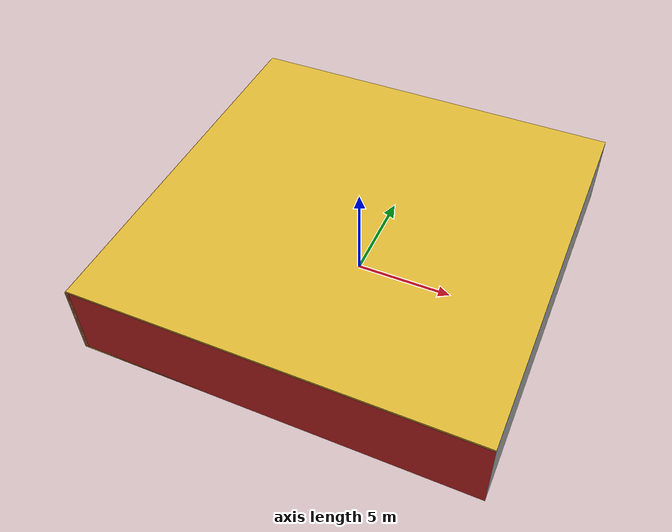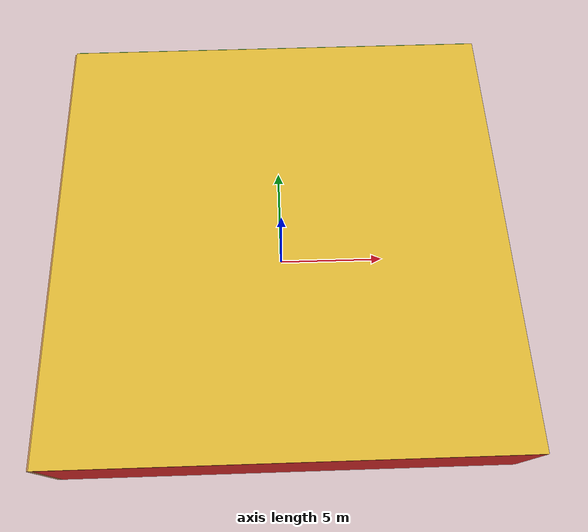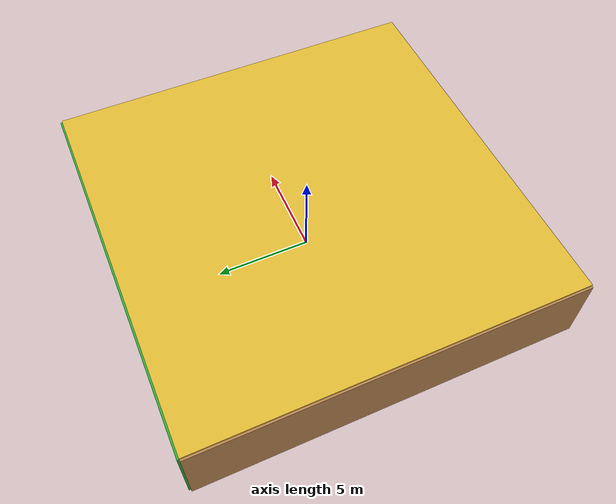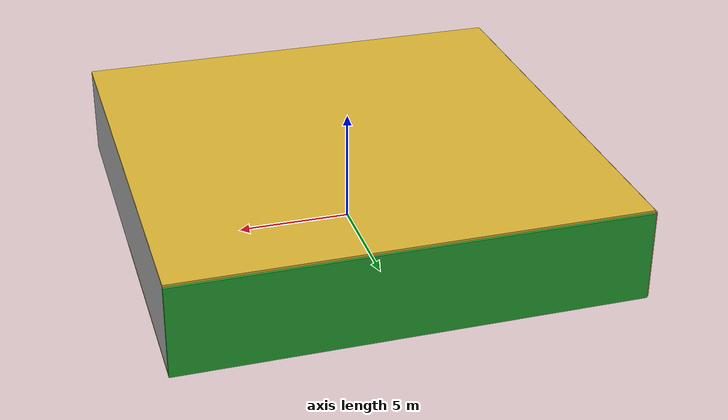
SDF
<sdf version="1.4">
 <world name="default">
  <physics type="ode">
   <max_step_size>0.001</max_step_size>
   <real_time_factor>1</real_time_factor>
   <real_time_update_rate>1000</real_time_update_rate>
   <gravity>0 0 -9.8</gravity>
  </physics>
  <scene><ambient>0.4 0.4 0.4 1</ambient><background>0.7 0.7 0.7 1</background><shadows>1</shadows></scene>
  <model name="Surrounding">
   <static>1</static>
   <link name="Ceiling">
    <collision name="Ceiling_Collision"><geometry><box><size>20 20 0.1</size></box></geometry></collision>
    <visual name="Ceiling_Visual">
     <geometry><box><size>20 20 0.1</size></box></geometry>
     <material>
      <script><uri>file://media/materials/scripts/gazebo.material</uri><name>Gazebo/Gold</name></script>
     </material>
    </visual>
    <pose>0 0 4.05 0 0 0</pose>
   </link>
   <link name="Wall_South">
    <collision name="Wall_South_Collision">
     <geometry><box><size>20 0 4</size></box></geometry>
     <pose>0 0 2 0 -0 0</pose>
    </collision>
    <visual name="Wall_South_Visual">
     <pose>0 0 2 0 -0 0</pose>
     <geometry><box><size>20 0 4</size></box></geometry>
     <material>
      <script><uri>file://media/materials/scripts/gazebo.material</uri><name>Gazebo/RedGlow</name></script>
     </material>
    </visual>
    <velocity_decay><linear>0</linear><angular>0</angular></velocity_decay>
    <pose>0 -10 0 0 -0 0</pose>
   </link>
   <link name="Wall_East">
    <collision name="Wall_21_Collision">
     <geometry><box><size>20 0 4</size></box></geometry>
     <pose>0 0 2 0 -0 0</pose>
    </collision>
    <visual name="Wall_21_Visual">
     <pose>0 0 2 0 -0 0</pose>
     <geometry><box><size>20 0 4</size></box></geometry>
     <material>
      <script><uri>file://media/materials/scripts/gazebo.material</uri><name>Gazebo/PioneerBody</name></script>
     </material>
    </visual>
    <velocity_decay><linear>0</linear><angular>0</angular></velocity_decay>
    <pose>10 0 0 0 -0 1.5708</pose>
   </link>
   <link name="Wall_North">
    <collision name="Wall_22_Collision">
     <geometry><box><size>20 0.2 4</size></box></geometry>
     <pose>0 0 2 0 -0 0</pose>
    </collision>
    <visual name="Wall_22_Visual">
     <pose>0 0 2 0 -0 0</pose>
     <geometry><box><size>20 0.2 4</size></box></geometry>
     <material>
      <script><uri>file://media/materials/scripts/gazebo.material</uri><name>Gazebo/Green</name></script>
     </material>
    </visual>
    <velocity_decay><linear>0</linear><angular>0</angular></velocity_decay>
    <pose>0 10 0 0 -0 0</pose>
   </link>
   <link name="Wall_West">
    <collision name="Wall_23_Collision">
     <geometry><box><size>20 0.2 4</size></box></geometry>
     <pose>0 0 2 0 -0 0</pose>
    </collision>
    <visual name="Wall_23_Visual">
     <pose>0 0 2 0 -0 0</pose>
     <geometry><box><size>20 0.2 4</size></box></geometry>
     <material>
      <script><uri>file://media/materials/scripts/gazebo.material</uri><name>Gazebo/Wood</name></script>
     </material>
    </visual>
    <velocity_decay><linear>0</linear><angular>0</angular></velocity_decay>
    <pose>-10 0 0 0 0 -1.5708</pose>
   </link>
   <link name="Ground_link">
    <collision name="collision">
     <pose>0 0 .05 0 -0 0</pose>
     <geometry><box><size>20 20 0.1</size></box></geometry>
    </collision>
    <visual name="visual">
     <pose>0 0 .05 0 -0 0</pose>
     <geometry><box><size>20 20 0.1</size></box></geometry>
     <material>
      <script><uri>file://media/materials/scripts/gazebo.material</uri><name>Gazebo/ZincYellow</name></script>
     </material>
    </visual>
   </link>
   <static>1</static>
  </model>
  <spherical_coordinates>
   <surface_model>EARTH_WGS84</surface_model>
   <latitude_deg>0</latitude_deg>
   <longitude_deg>0</longitude_deg>
   <elevation>0</elevation>
   <heading_deg>0</heading_deg>
  </spherical_coordinates>
  <light name="lightball_0" type="diffuse">
   <diffuse>0.8 0.8 0.8 1</diffuse>
   <specular>0.2 0.2 0.2 1</specular>
   <attenuation>
    <range>100</range>
    <constant>0.7</constant>
    <linear>0.01</linear>
    <quadratic>0.001</quadratic>
   </attenuation>
   <direction>-0.5 0.1 -0.9</direction>
   <pose>-9.19041989229 -6.64424774914 2.36919932605 0 0 0</pose>
  </light>
  <light name="lightball_1" type="diffuse">
   <diffuse>0.8 0.8 0.8 1</diffuse>
   <specular>0.2 0.2 0.2 1</specular>
   <attenuation>
    <range>100</range>
    <constant>0.7</constant>
    <linear>0.01</linear>
    <quadratic>0.001</quadratic>
   </attenuation>
   <direction>-0.5 0.1 -0.9</direction>
   <pose>-5.84477859204 -0.267742174962 2.15540942471 0 0 0</pose>
  </light>
  <light name="lightball_2" type="diffuse">
   <diffuse>0.8 0.8 0.8 1</diffuse>
   <specular>0.2 0.2 0.2 1</specular>
   <attenuation>
    <range>100</range>
    <constant>0.7</constant>
    <linear>0.01</linear>
    <quadratic>0.001</quadratic>
   </attenuation>
   <direction>-0.5 0.1 -0.9</direction>
   <pose>-4.18695174594 -6.36143882477 2.8811003094 0 0 0</pose>
  </light>
  <light name="lightball_3" type="diffuse">
   <diffuse>0.8 0.8 0.8 1</diffuse>
   <specular>0.2 0.2 0.2 1</specular>
   <attenuation>
    <range>100</range>
    <constant>0.7</constant>
    <linear>0.01</linear>
    <quadratic>0.001</quadratic>
   </attenuation>
   <direction>-0.5 0.1 -0.9</direction>
   <pose>-7.12056902929 9.24817988089 2.2444548599 0 0 0</pose>
  </light>
  <light name="lightball_4" type="diffuse">
   <diffuse>0.8 0.8 0.8 1</diffuse>
   <specular>0.2 0.2 0.2 1</specular>
   <attenuation>
    <range>100</range>
    <constant>0.7</constant>
    <linear>0.01</linear>
    <quadratic>0.001</quadratic>
   </attenuation>
   <direction>-0.5 0.1 -0.9</direction>
   <pose>-2.09303743267 -7.07928154312 0.918965139581 0 0 0</pose>
  </light>
  <light name="lightball_5" type="diffuse">
   <diffuse>0.8 0.8 0.8 1</diffuse>
   <specular>0.2 0.2 0.2 1</specular>
   <attenuation>
    <range>100</range>
    <constant>0.7</constant>
    <linear>0.01</linear>
    <quadratic>0.001</quadratic>
   </attenuation>
   <direction>-0.5 0.1 -0.9</direction>
   <pose>-1.26008768545 0.752983705741 1.04005203723 0 0 0</pose>
  </light>
  <light name="lightball_6" type="diffuse">
   <diffuse>0.8 0.8 0.8 1</diffuse>
   <specular>0.2 0.2 0.2 1</specular>
   <attenuation>
    <range>100</range>
    <constant>0.7</constant>
    <linear>0.01</linear>
    <quadratic>0.001</quadratic>
   </attenuation>
   <direction>-0.5 0.1 -0.9</direction>
   <pose>-9.69432159043 4.99429295028 3.07102641343 0 0 0</pose>
  </light>
  <include><uri>model://cabinet</uri><pose>-6.91557751211 -1.80718872079 0 0 0 1.8639652463</pose></include>
  <include><uri>model://cabinet</uri><pose>-6.57527642198 5.43012103163 0 0 0 0.610562095132</pose></include>
  <include>
   <uri>model://textured_shapes</uri>
   <pose>-4.73203619371 -3.68175285376 0 0 0 0.773996525386</pose>
  </include>
  <include>
   <uri>model://construction_cone</uri>
   <pose>-0.850414426703 -1.29227870463 0 0 0 2.89939062447</pose>
  </include>
  <include><uri>model://cabinet</uri><pose>-2.66639539288 6.33735654643 0 0 0 1.71488612841</pose></include>
  <include>
   <uri>model://robocup_3Dsim_goal</uri>
   <pose>1.02554758937 -4.39668473233 0 0 0 1.02571666331</pose>
  </include>
  <include>
   <uri>model://robocup_3Dsim_goal</uri>
   <pose>1.75930618423 6.53858265059 0 0 0 1.00498085564</pose>
  </include>
  <include><uri>model://cabinet</uri><pose>3.37959788089 -0.948392929513 0 0 0 0.387384196653</pose></include>
  <include>
   <uri>model://construction_cone</uri>
   <pose>7.31659993601 8.62514140975 0 0 0 0.296127439479</pose>
  </include>
 </world>
</sdf>

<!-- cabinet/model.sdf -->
<sdf version="1.5">
  <model name="cabinet">
    <static>true</static>
    <link name="cabinet_bottom_plate">
      <inertial>
        <pose>0 0 -1 0 0 0</pose>
        <inertia>
          <ixx>2.050000</ixx>
          <ixy>0</ixy>
          <ixz>0</ixz>
          <iyy>2.050000</iyy>
          <iyz>0</iyz>
          <izz>2.050000</izz>
        </inertia>
        <mass>25.000000</mass>
      </inertial>
      <collision name="cabinet_bottom_plate_geom">
        <pose>0 0 0.010000 0 0 0</pose>
        <geometry>
          <box>
            <size>0.450000 0.450000 0.020000</size>
          </box>
        </geometry>
      </collision>
      <visual name="cabinet_bottom_plate_geom_visual">
        <pose>0 0 0.010000 0 0 0</pose>
        <geometry>
          <box>
            <size>0.450000 0.450000 0.020000</size>
          </box>
        </geometry>
        <material>
          <script>
            <uri>model://media/materials/scripts/gazebo.material</uri>
            <name>Gazebo/Wood</name>
          </script>
        </material>
      </visual>
      <collision name="cabinet_bottom_plate_geom_cabinet_back_plate">
        <pose>0.235000 0 0.510000 0 0 0</pose>
        <geometry>
          <box>
            <size>0.020000 0.450000 1.020000</size>
          </box>
        </geometry>
      </collision>
      <visual name="cabinet_bottom_plate_geom_cabinet_back_plate_visual">
        <pose>0.235000 0 0.510000 0 0 0</pose>
        <geometry>
          <box>
            <size>0.020000 0.450000 1.020000</size>
          </box>
        </geometry>
        <material>
          <script>
            <uri>model://media/materials/scripts/gazebo.material</uri>
            <name>Gazebo/Wood</name>
          </script>
        </material>
      </visual>
      <collision name="cabinet_bottom_plate_geom_cabinet_left_plate">
        <pose>0 0.235000 0.510000 0 0 0</pose>
        <geometry>
          <box>
            <size>0.450000 0.020000 1.020000</size>
          </box>
        </geometry>
      </collision>
      <visual name="cabinet_bottom_plate_geom_cabinet_left_plate_visual">
        <pose>0 0.235000 0.510000 0 0 0</pose>
        <geometry>
          <box>
            <size>0.450000 0.020000 1.020000</size>
          </box>
        </geometry>
        <material>
          <script>
            <uri>model://media/materials/scripts/gazebo.material</uri>
            <name>Gazebo/Wood</name>
          </script>
        </material>
      </visual>
      <collision name="cabinet_bottom_plate_geom_cabinet_middle_plate">
        <pose>0 0 0.510000 0 0 0</pose>
        <geometry>
          <box>
            <size>0.450000 0.450000 0.020000</size>
          </box>
        </geometry>
      </collision>
      <visual name="cabinet_bottom_plate_geom_cabinet_middle_plate_visual">
        <pose>0 0 0.510000 0 0 0</pose>
        <geometry>
          <box>
            <size>0.450000 0.450000 0.020000</size>
          </box>
        </geometry>
        <material>
          <script>
            <uri>model://media/materials/scripts/gazebo.material</uri>
            <name>Gazebo/Wood</name>
          </script>
        </material>
      </visual>
      <collision name="cabinet_bottom_plate_geom_cabinet_right_plate">
        <pose>0 -0.235000 0.510000 0 0 0</pose>
        <geometry>
          <box>
            <size>0.450000 0.020000 1.020000</size>
          </box>
        </geometry>
      </collision>
      <visual name="cabinet_bottom_plate_geom_cabinet_right_plate_visual">
        <pose>0 -0.235000 0.510000 0 0 0</pose>
        <geometry>
          <box>
            <size>0.450000 0.020000 1.020000</size>
          </box>
        </geometry>
        <material>
          <script>
            <uri>model://media/materials/scripts/gazebo.material</uri>
            <name>Gazebo/Wood</name>
          </script>
        </material>
      </visual>
      <collision name="cabinet_bottom_plate_geom_cabinet_top_plate">
        <pose>0 0 1.010000 0 0 0</pose>
        <geometry>
          <box>
            <size>0.450000 0.450000 0.020000</size>
          </box>
        </geometry>
      </collision>
      <visual name="cabinet_bottom_plate_geom_cabinet_top_plate_visual">
        <pose>0 0 1.010000 0 0 0</pose>
        <geometry>
          <box>
            <size>0.450000 0.450000 0.020000</size>
          </box>
        </geometry>
        <material>
          <script>
            <uri>model://media/materials/scripts/gazebo.material</uri>
            <name>Gazebo/Wood</name>
          </script>
        </material>
      </visual>
    </link>
  </model>
</sdf>

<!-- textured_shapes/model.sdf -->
<sdf version="1.6">
  <model name="textured_shapes">
    <pose>0 0 0.5 0 0 0</pose>
    <link name="box">
      <pose>0 -1.5 0 0 0 0</pose>
      <collision name="collision">
        <geometry>
          <box>
            <size>1 1 1</size>
          </box>
        </geometry>
      </collision>
      <visual name="visual">
        <geometry>
          <box>
            <size>1 1 1</size>
          </box>
        </geometry>
        <material>
          <script>
            <uri>model://../model_source/models/textured_shapes/materials/scripts</uri>
            <uri>model://../model_source/models/textured_shapes/materials/textures</uri>
            <name>TexturedShape/Squares</name>
          </script>
        </material>
      </visual>
    </link>
    <link name="sphere">
      <collision name="collision">
        <geometry>
          <sphere>
            <radius>0.5</radius>
          </sphere>
        </geometry>
      </collision>
      <visual name="visual">
        <geometry>
          <sphere>
            <radius>0.5</radius>
          </sphere>
        </geometry>
        <material>
          <script>
            <uri>model://../model_source/models/textured_shapes/materials/scripts</uri>
            <uri>model://../model_source/models/textured_shapes/materials/textures</uri>
            <name>TexturedShape/Squares</name>
          </script>
        </material>
      </visual>
    </link>
    <link name="cylinder">
      <pose>0 1.5 0 0 0 0</pose>
      <collision name="collision">
        <geometry>
          <cylinder>
            <radius>0.5</radius>
            <length>1</length>
          </cylinder>
        </geometry>
      </collision>
      <visual name="visual">
        <geometry>
          <cylinder>
            <radius>0.5</radius>
            <length>1</length>
          </cylinder>
        </geometry>
        <material>
          <script>
            <uri>model://../model_source/models/textured_shapes/materials/scripts</uri>
            <uri>model://../model_source/models/textured_shapes/materials/textures</uri>
            <name>TexturedShape/Squares</name>
          </script>
        </material>
      </visual>
    </link>
  </model>
</sdf>

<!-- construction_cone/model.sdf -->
<sdf version="1.5">
  <model name="Construction Cone">
    <link name="link">
      <collision name="collision">
        <geometry>
          <mesh>
            <scale>10 10 10</scale>
            <uri>file://isr-testbed/construction_cone/meshes/construction_cone.dae</uri>
          </mesh>
        </geometry>
      </collision>
      <visual name="visual">
        <geometry>
          <mesh>
            <scale>10 10 10</scale>
            <uri>file://isr-testbed/construction_cone/meshes/construction_cone.dae</uri>
          </mesh>
        </geometry>
      </visual>
    </link>
  </model>
</sdf>

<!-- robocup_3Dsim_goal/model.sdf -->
<sdf version="1.5">
  <model name="robocup_3d_goal">
    <static>true</static>
    <link name="left_post">
      <pose>0 1.05 0.45 0 0 0</pose>
      <collision name="collision">
        <geometry>
          <cylinder>
            <radius>0.05</radius>
            <length>0.9</length>
          </cylinder>
        </geometry>
      </collision>
      <visual name="visual">
        <geometry>
          <cylinder>
            <radius>0.05</radius>
            <length>0.9</length>
          </cylinder>
        </geometry>
        <material>
          <script>
            <uri>file://media/materials/scripts/gazebo.material</uri>
            <name>Gazebo/ZincYellow</name>
          </script>
        </material>
      </visual>
    </link>
    <link name="left_support_horiz_lower">
      <pose>0.30 1.05 0.01 0 0 0</pose>
      <collision name="collision">
        <geometry>
          <box>
            <size>0.50 0.02 0.02</size>
          </box>
        </geometry>
      </collision>
      <visual name="visual">
        <geometry>
          <box>
            <size>0.50 0.02 0.02</size>
          </box>
        </geometry>
        <material>
          <script>
            <uri>file://media/materials/scripts/gazebo.material</uri>
            <name>Gazebo/White</name>
          </script>
        </material>
      </visual>
    </link>
    <link name="left_support_horiz_upper">
      <pose>0.30 1.05 0.79 0 0 0</pose>
      <collision name="collision">
        <geometry>
          <box>
            <size>0.50 0.02 0.02</size>
          </box>
        </geometry>
      </collision>
      <visual name="visual">
        <geometry>
          <box>
            <size>0.50 0.02 0.02</size>
          </box>
        </geometry>
        <material>
          <script>
            <uri>file://media/materials/scripts/gazebo.material</uri>
            <name>Gazebo/White</name>
          </script>
        </material>
      </visual>
    </link>
    <link name="left_support_vertical">
      <pose>0.56 1.05 0.4 0 1.5708 0</pose>
      <collision name="collision">
        <geometry>
          <box>
            <size>0.80 0.02 0.02</size>
          </box>
        </geometry>
      </collision>
      <visual name="visual">
        <geometry>
          <box>
            <size>0.80 0.02 0.02</size>
          </box>
        </geometry>
        <material>
          <script>
            <uri>file://media/materials/scripts/gazebo.material</uri>
            <name>Gazebo/White</name>
          </script>
        </material>
      </visual>
    </link>
    <link name="right_support_horiz_lower">
      <pose>0.30 -1.05 0.01 0 0 0</pose>
      <collision name="collision">
        <geometry>
          <box>
            <size>0.50 0.02 0.02</size>
          </box>
        </geometry>
      </collision>
      <visual name="visual">
        <geometry>
          <box>
            <size>0.50 0.02 0.02</size>
          </box>
        </geometry>
        <material>
          <script>
            <uri>file://media/materials/scripts/gazebo.material</uri>
            <name>Gazebo/White</name>
          </script>
        </material>
      </visual>
    </link>
    <link name="right_support_horiz_upper">
      <pose>0.30 -1.05 0.79 0 0 0</pose>
      <collision name="collision">
        <geometry>
          <box>
            <size>0.50 0.02 0.02</size>
          </box>
        </geometry>
      </collision>
      <visual name="visual">
        <geometry>
          <box>
            <size>0.50 0.02 0.02</size>
          </box>
        </geometry>
        <material>
          <script>
            <uri>file://media/materials/scripts/gazebo.material</uri>
            <name>Gazebo/White</name>
          </script>
        </material>
      </visual>
    </link>
    <link name="right_support_vertical">
      <pose>0.56 -1.05 0.4 0 1.5708 0</pose>
      <collision name="collision">
        <geometry>
          <box>
            <size>0.80 0.02 0.02</size>
          </box>
        </geometry>
      </collision>
      <visual name="visual">
        <geometry>
          <box>
            <size>0.80 0.02 0.02</size>
          </box>
        </geometry>
        <material>
          <script>
            <uri>file://media/materials/scripts/gazebo.material</uri>
            <name>Gazebo/White</name>
          </script>
        </material>
      </visual>
    </link>
    <link name="center_support_horiz_lower">
      <pose>0.56 0 0.01 0 1.5708 0</pose>
      <collision name="collision">
        <geometry>
          <box>
            <size>0.02 2.08 0.02</size>
          </box>
        </geometry>
      </collision>
      <visual name="visual">
        <geometry>
          <box>
            <size>0.02 2.08 0.02</size>
          </box>
        </geometry>
        <material>
          <script>
            <uri>file://media/materials/scripts/gazebo.material</uri>
            <name>Gazebo/White</name>
          </script>
        </material>
      </visual>
    </link>
    <link name="center_support_horiz_upper">
      <pose>0.56 0 0.79 0 1.5708 0</pose>
      <collision name="collision">
        <geometry>
          <box>
            <size>0.02 2.08 0.02</size>
          </box>
        </geometry>
      </collision>
      <visual name="visual">
        <geometry>
          <box>
            <size>0.02 2.08 0.02</size>
          </box>
        </geometry>
        <material>
          <script>
            <uri>file://media/materials/scripts/gazebo.material</uri>
            <name>Gazebo/White</name>
          </script>
        </material>
      </visual>
    </link>
    <link name="right_post">
      <pose>0 -1.05 0.45 0 0 0</pose>
      <collision name="collision">
        <geometry>
          <cylinder>
            <radius>0.05</radius>
            <length>0.9</length>
          </cylinder>
        </geometry>
      </collision>
      <visual name="visual">
        <geometry>
          <cylinder>
            <radius>0.05</radius>
            <length>0.9</length>
          </cylinder>
        </geometry>
        <material>
          <script>
            <uri>file://media/materials/scripts/gazebo.material</uri>
            <name>Gazebo/ZincYellow</name>
          </script>
        </material>
      </visual>
    </link>
    <link name="crossbar">
      <pose>0 0 0.85 1.57 1.57 0</pose>
      <collision name="collision">
        <geometry>
          <cylinder>
            <radius>0.05</radius>
            <length>2.0</length>
          </cylinder>
        </geometry>
      </collision>
      <visual name="visual">
        <geometry>
          <cylinder>
            <radius>0.05</radius>
            <length>2.0</length>
          </cylinder>
        </geometry>
        <material>
          <script>
            <uri>file://media/materials/scripts/gazebo.material</uri>
            <name>Gazebo/ZincYellow</name>
          </script>
        </material>
      </visual>
    </link>
    <link name="center_net">
      <pose>0.56 0 0.40 0 0 0</pose>
      <collision name="collision">
        <geometry>
          <box>
            <size>0.01 2.1 0.80</size>
          </box>
        </geometry>
      </collision>
      <visual name="visual">
        <geometry>
          <box>
            <size>0.01 2.1 0.80</size>
          </box>
        </geometry>
        <material>
          <script>
            <uri>model://../model_source/models/robocup09_spl_field/materials/scripts/</uri>
            <uri>model://../model_source/models/robocup09_spl_field/materials/textures/</uri>
            <name>RoboCup/Net</name>
          </script>
        </material>
      </visual>
    </link>
    <link name="left_net">
      <pose>0.30 1.05 0.40 0 0 0</pose>
      <collision name="collision">
        <geometry>
          <box>
            <size>0.50 0.01 0.76</size>
          </box>
        </geometry>
      </collision>
      <visual name="visual">
        <geometry>
          <box>
            <size>0.50 0.01 0.76</size>
          </box>
        </geometry>
        <material>
          <script>
            <uri>model://../model_source/models/robocup09_spl_field/materials/scripts/</uri>
            <uri>model://../model_source/models/robocup09_spl_field/materials/textures/</uri>
            <name>RoboCup/Net</name>
          </script>
        </material>
      </visual>
    </link>
    <link name="right_net">
      <pose>0.30 -1.05 0.40 0 0 0</pose>
      <collision name="collision">
        <geometry>
          <box>
            <size>0.50 0.01 0.76</size>
          </box>
        </geometry>
      </collision>
      <visual name="visual">
        <geometry>
          <box>
            <size>0.50 0.01 0.76</size>
          </box>
        </geometry>
        <material>
          <script>
            <uri>model://../model_source/models/robocup09_spl_field/materials/scripts/</uri>
            <uri>model://../model_source/models/robocup09_spl_field/materials/textures/</uri>
            <name>RoboCup/Net</name>
          </script>
        </material>
      </visual>
    </link>
  </model>
</sdf>
